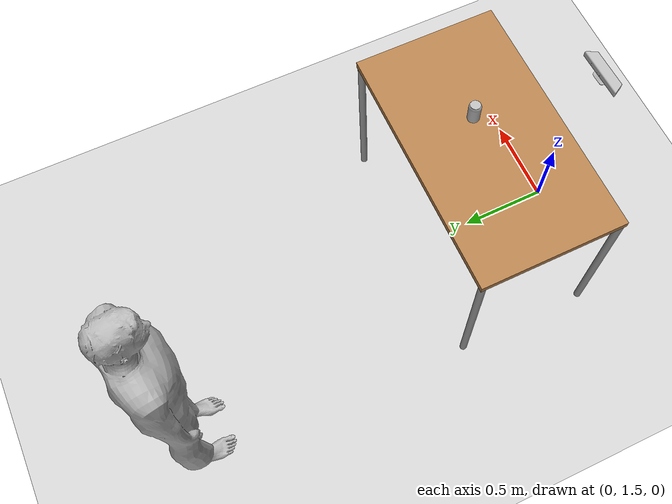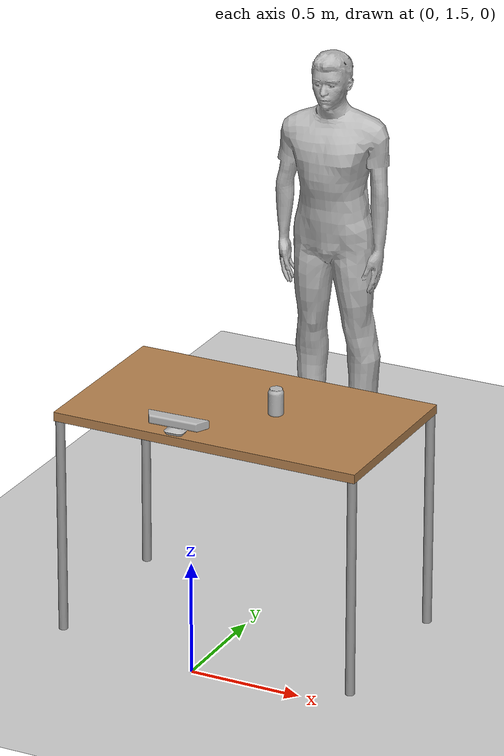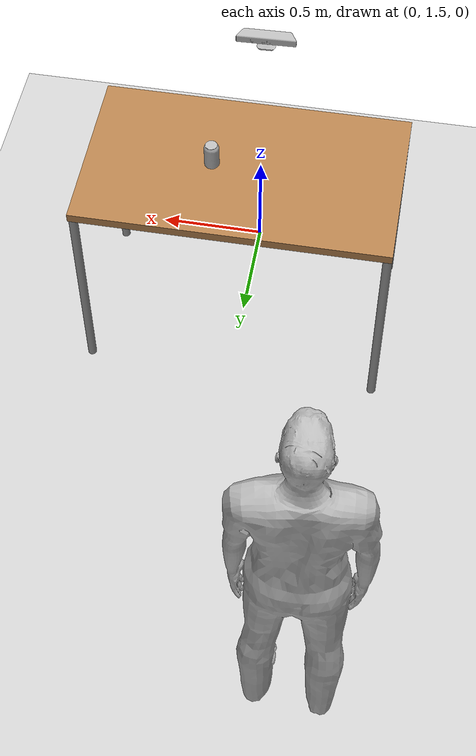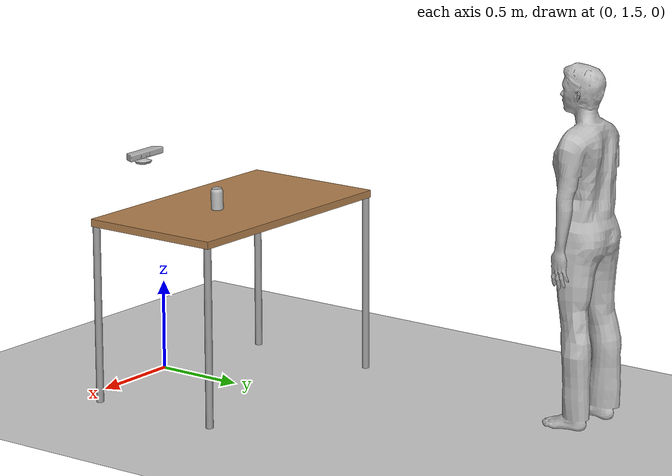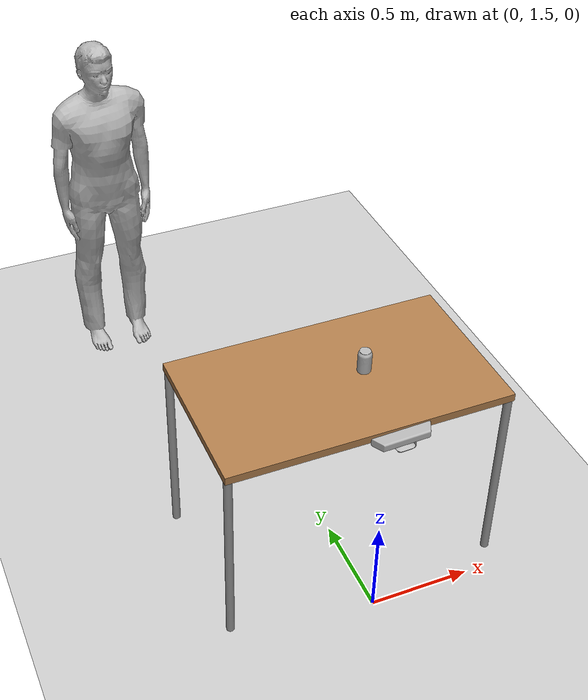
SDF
<sdf version="1.6">
 <world name="default">
  <light name="sun" type="directional">
   <pose>0 0 10 0 -0 0</pose>
   <diffuse>0.8 0.8 0.8 1</diffuse>
   <specular>0.1 0.1 0.1 1</specular>
   <attenuation>
    <range>1000</range>
    <constant>0.9</constant>
    <linear>0.01</linear>
    <quadratic>0.001</quadratic>
   </attenuation>
   <direction>-0.5 0.5 -1</direction>
  </light>
  <model name="ground_plane">
   <static>1</static>
   <link name="world_link">
    <collision name="collision">
     <geometry><plane><normal>0 0 1</normal><size>100 100</size></plane></geometry>
     <surface><friction><ode><mu>100</mu><mu2>50</mu2></ode></friction></surface>
    </collision>
    <visual name="visual">
     <cast_shadows>0</cast_shadows>
     <geometry><plane><normal>0 0 1</normal><size>100 100</size></plane></geometry>
     <material>
      <script><uri>file://media/materials/scripts/gazebo.material</uri><name>Gazebo/Grey</name></script>
     </material>
    </visual>
   </link>
  </model>
  <gravity>0 0 -9.8</gravity>
  <magnetic_field>6e-06 2.3e-05 -4.2e-05</magnetic_field>
  <atmosphere type="adiabatic"/>
  <physics name="default_physics" default="0" type="ode">
   <max_step_size>0.001</max_step_size>
   <real_time_factor>1</real_time_factor>
   <real_time_update_rate>1000</real_time_update_rate>
  </physics>
  <scene><ambient>0.4 0.4 0.4 1</ambient><background>0.7 0.7 0.7 1</background><shadows>1</shadows></scene>
  <spherical_coordinates>
   <surface_model>EARTH_WGS84</surface_model>
   <latitude_deg>0</latitude_deg>
   <longitude_deg>0</longitude_deg>
   <elevation>0</elevation>
   <heading_deg>0</heading_deg>
  </spherical_coordinates>
  <model name="table">
   <static>0</static>
   <link name="link">
    <collision name="surface">
     <pose>0 0 1 0 -0 0</pose>
     <geometry><box><size>1.5 0.8 0.03</size></box></geometry>
     <surface><friction><ode><mu>0.6</mu><mu2>0.6</mu2></ode></friction></surface>
    </collision>
    <visual name="visual1">
     <pose>0 0 1 0 -0 0</pose>
     <geometry><box><size>1.4 0.8 0.04</size></box></geometry>
     <material>
      <script><uri>file://media/materials/scripts/gazebo.material</uri><name>Gazebo/Wood</name></script>
     </material>
    </visual>
    <collision name="front_left_leg">
     <pose>0.68 0.38 0.5 0 -0 0</pose>
     <geometry><cylinder><radius>0.02</radius><length>1</length></cylinder></geometry>
    </collision>
    <visual name="front_left_leg">
     <pose>0.68 0.38 0.5 0 -0 0</pose>
     <geometry><cylinder><radius>0.02</radius><length>1</length></cylinder></geometry>
     <material>
      <script><uri>file://media/materials/scripts/gazebo.material</uri><name>Gazebo/Grey</name></script>
     </material>
    </visual>
    <collision name="front_right_leg">
     <pose>0.68 -0.38 0.5 0 -0 0</pose>
     <geometry><cylinder><radius>0.02</radius><length>1</length></cylinder></geometry>
    </collision>
    <visual name="front_right_leg">
     <pose>0.68 -0.38 0.5 0 -0 0</pose>
     <geometry><cylinder><radius>0.02</radius><length>1</length></cylinder></geometry>
     <material>
      <script><uri>file://media/materials/scripts/gazebo.material</uri><name>Gazebo/Grey</name></script>
     </material>
    </visual>
    <collision name="back_right_leg">
     <pose>-0.68 -0.38 0.5 0 -0 0</pose>
     <geometry><cylinder><radius>0.02</radius><length>1</length></cylinder></geometry>
    </collision>
    <visual name="back_right_leg">
     <pose>-0.68 -0.38 0.5 0 -0 0</pose>
     <geometry><cylinder><radius>0.02</radius><length>1</length></cylinder></geometry>
     <material>
      <script><uri>file://media/materials/scripts/gazebo.material</uri><name>Gazebo/Grey</name></script>
     </material>
    </visual>
    <collision name="back_left_leg">
     <pose>-0.68 0.38 0.5 0 -0 0</pose>
     <geometry><cylinder><radius>0.02</radius><length>1</length></cylinder></geometry>
    </collision>
    <visual name="back_left_leg">
     <pose>-0.68 0.38 0.5 0 -0 0</pose>
     <geometry><cylinder><radius>0.02</radius><length>1</length></cylinder></geometry>
     <material>
      <script><uri>file://media/materials/scripts/gazebo.material</uri><name>Gazebo/Grey</name></script>
     </material>
    </visual>
    <inertial>
     <inertia><ixx>1</ixx><ixy>0</ixy><ixz>0</ixz><iyy>1</iyy><iyz>0</iyz><izz>1</izz></inertia>
     <mass>1</mass>
    </inertial>
   </link>
   <pose>-0.001151 2.00037 -0.010978 -2.3e-05 0.000722 0.000146</pose>
  </model>
  <model name="coke_can">
   <link name="link">
    <inertial>
     <mass>0.39</mass>
     <inertia>
      <ixx>0.00055575</ixx>
      <ixy>0</ixy>
      <ixz>0</ixz>
      <iyy>0.00055575</iyy>
      <iyz>0</iyz>
      <izz>0.0001755</izz>
     </inertia>
    </inertial>
    <collision name="collision">
     <pose>0.003937 0.004724 -0.18 0 -0 0</pose>
     <geometry><mesh><uri>model://coke_can/meshes/coke_can.dae</uri><scale>1 1 1</scale></mesh></geometry>
    </collision>
    <visual name="visual">
     <pose>0.003937 0.004724 -0.18 0 -0 0</pose>
     <geometry><mesh><uri>model://coke_can/meshes/coke_can.dae</uri><scale>1 1 1</scale></mesh></geometry>
    </visual>
   </link>
   <pose>0.140347 2.00358 1.00134 -0.011934 0.004029 -1.53446</pose>
  </model>
  <model name="person_standing">
   <link name="link">
    <inertial>
     <pose>0 -0.1 0.95 0 -0 0</pose>
     <mass>80</mass>
     <inertia><ixx>24.88</ixx><ixy>0</ixy><ixz>0</ixz><iyy>25.73</iyy><iyz>0</iyz><izz>2.48</izz></inertia>
    </inertial>
    <collision name="bottom">
     <pose>0 -0.1 0.01 0 -0 0</pose>
     <geometry><box><size>0.5 0.35 0.02</size></box></geometry>
    </collision>
    <collision name="person">
     <pose>0 0 0.02 0.04 -0 0</pose>
     <geometry><mesh><uri>model://person_standing/meshes/standing.dae</uri><scale>1 1 1</scale></mesh></geometry>
    </collision>
    <visual name="visual">
     <pose>0 0 0.02 0.04 -0 0</pose>
     <geometry><mesh><uri>model://person_standing/meshes/standing.dae</uri><scale>1 1 1</scale></mesh></geometry>
    </visual>
   </link>
   <pose>-0.5241 4 -1e-06 -2e-06 1e-06 0.001126</pose>
  </model>
  <model name="kinect_2">
   <static>1</static>
   <pose>0 1.4 1.2 0 -0 1.6</pose>
   <link name="link">
    <inertial><mass>0.1</mass></inertial>
    <collision name="collision"><geometry><box><size>0.073 0.276 0.072</size></box></geometry></collision>
    <visual name="visual">
     <geometry><mesh><uri>model://kinect/meshes/kinect.dae</uri><scale>1 1 1</scale></mesh></geometry>
    </visual>
    <sensor name="camera" type="depth">
     <update_rate>20</update_rate>
     <camera name="__default__">
      <horizontal_fov>1.0472</horizontal_fov>
      <image><width>320</width><height>240</height></image>
      <clip><near>0.05</near><far>3</far></clip>
     </camera>
     <plugin name="camera_plugin" filename="libgazebo_ros_openni_kinect.so">
      <baseline>0.2</baseline>
      <alwaysOn>true</alwaysOn>
      <updateRate>0.0</updateRate>
      <cameraName>camera_ir</cameraName>
      <imageTopicName>/camera/color/image_raw</imageTopicName>
      <cameraInfoTopicName>/camera/color/camera_info</cameraInfoTopicName>
      <depthImageTopicName>/camera/depth/image_raw</depthImageTopicName>
      <depthImageCameraInfoTopicName>/camera/depth/camera_info</depthImageCameraInfoTopicName>
      <pointCloudTopicName>/camera/depth/points</pointCloudTopicName>
      <frameName>camera_link</frameName>
      <pointCloudCutoff>0.5</pointCloudCutoff>
      <pointCloudCutoffMax>5.0</pointCloudCutoffMax>
      <distortionK1>0</distortionK1>
      <distortionK2>0</distortionK2>
      <distortionK3>0</distortionK3>
      <distortionT1>0</distortionT1>
      <distortionT2>0</distortionT2>
      <CxPrime>0</CxPrime>
      <Cx>0</Cx>
      <Cy>0</Cy>
      <focalLength>0</focalLength>
      <hackBaseline>0</hackBaseline>
     </plugin>
    </sensor>
   </link>
  </model>
 </world>
</sdf>
